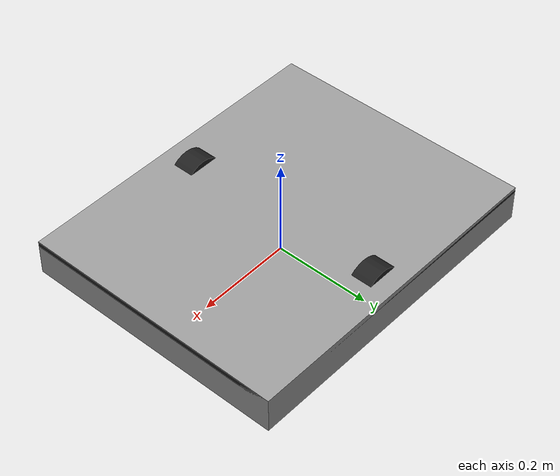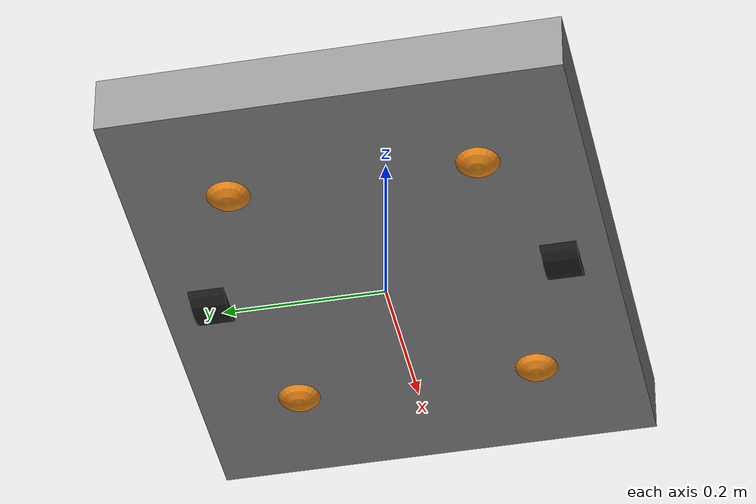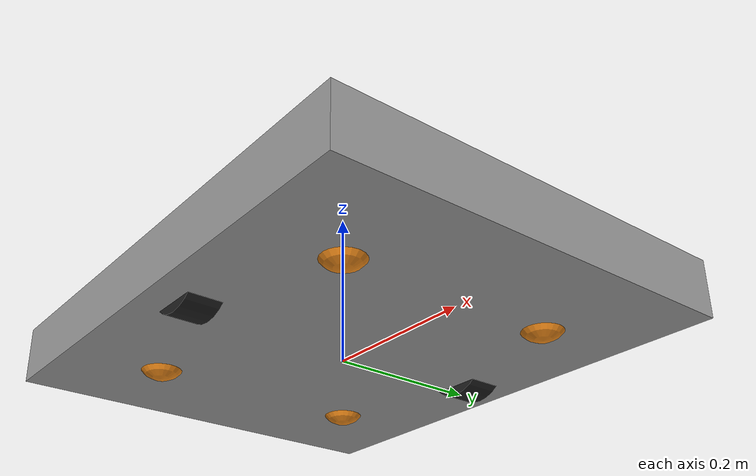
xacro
<?xml version="1.0"?>
<robot name="underlift_robot" xmlns:xacro="http://www.ros.org/wiki/xacro">

    <xacro:property name="base_length" value="0.679" />
    <xacro:property name="base_width" value="0.550" />
    <xacro:property name="base_height" value="0.075" />
    <xacro:property name="wheel_radius" value="0.05" />
    <xacro:property name="wheel_length" value="0.044" />
    <xacro:property name="caster_radius" value="0.035" />
    <xacro:property name="lift_height" value="0.005" />

    <link name="base_footprint" />

    <link name="base_link">
        <visual>
            <geometry>
                 <box size="${base_length} ${base_width} ${base_height}"/>
            </geometry>
            <origin xyz="0 0 0" rpy="0 0 0" />
            <material name="grey" />
        </visual>
        <collision>
            <geometry>
                <box size="${base_length} ${base_width} ${base_height}"/>
            </geometry>
            <origin xyz="0 0 0" rpy="0 0 0" />
        </collision>
        <xacro:box_inertia m="20.0" x="${base_length}" y="${base_width}" z="${base_height}"
                           o_xyz="0 0 ${base_height / 2.0}" o_rpy="0 0 0" />
    </link>

    <xacro:macro name="wheel_link" params="prefix">
        <link name="${prefix}_wheel_link">
            <visual>
                <geometry>
                    <cylinder radius="${wheel_radius}" length="${wheel_length}" />
                </geometry>
                <origin xyz="0 0 0" rpy="${pi / 2.0} 0 0" />
                <material name="black" />
            </visual>
            <collision>
                <geometry>
                    <cylinder radius="${wheel_radius}" length="${wheel_length}" />
                </geometry>
                <origin xyz="0 0 0" rpy="${pi / 2.0} 0 0" />
            </collision>
            <xacro:cylinder_inertia m="10.0" r="${wheel_radius}" l="${wheel_length}"
                                    o_xyz="0 0 0" o_rpy="${pi / 2.0} 0 0" />
        </link>
    </xacro:macro>

    <xacro:wheel_link prefix="right" />
    <xacro:wheel_link prefix="left" />

    <link name="front_right_caster_wheel_link">
        <visual>
            <geometry>
                <sphere radius="${caster_radius}" />
            </geometry>
            <origin xyz="0 0 0" rpy="0 0 0" />
            <material name="orange" />
        </visual>
        <collision>
            <geometry>
                <sphere radius="${caster_radius}" />
            </geometry>
            <origin xyz="0 0 0" rpy="0 0 0" />
        </collision>
        <xacro:sphere_inertia m="0.1" r="${caster_radius}"
                              o_xyz="0 0 0" o_rpy="0 0 0" />
    </link>

    <link name="front_left_caster_wheel_link">
        <visual>
            <geometry>
                <sphere radius="${caster_radius}" />
            </geometry>
            <origin xyz="0 0 0" rpy="0 0 0" />
            <material name="orange" />
        </visual>
        <collision>
            <geometry>
                <sphere radius="${caster_radius}" />
            </geometry>
            <origin xyz="0 0 0" rpy="0 0 0" />
        </collision>
        <xacro:sphere_inertia m="0.1" r="${caster_radius}"
                              o_xyz="0 0 0" o_rpy="0 0 0" />
    </link>

    <link name="back_left_caster_wheel_link">
        <visual>
            <geometry>
                <sphere radius="${caster_radius}" />
            </geometry>
            <origin xyz="0 0 0" rpy="0 0 0" />
            <material name="orange" />
        </visual>
        <collision>
            <geometry>
                <sphere radius="${caster_radius}" />
            </geometry>
            <origin xyz="0 0 0" rpy="0 0 0" />
        </collision>
        <xacro:sphere_inertia m="0.1" r="${caster_radius}"
                              o_xyz="0 0 0" o_rpy="0 0 0" />
    </link>

    <link name="back_right_caster_wheel_link">
        <visual>
            <geometry>
                <sphere radius="${caster_radius}" />
            </geometry>
            <origin xyz="0 0 0" rpy="0 0 0" />
            <material name="orange" />
        </visual>
        <collision>
            <geometry>
                <sphere radius="${caster_radius}" />
            </geometry>
            <origin xyz="0 0 0" rpy="0 0 0" />
        </collision>
        <xacro:sphere_inertia m="0.1" r="${caster_radius}"
                              o_xyz="0 0 0" o_rpy="0 0 0" />
    </link>

    <link name="lift_link">
        <visual>
            <geometry>
                <box size="${base_length / 4} ${base_width / 4} ${lift_height}"/>
            </geometry>
            <origin xyz="0 0 0" rpy="0 0 0"/>
            <material name="orange"/>
        </visual>
        <collision>
            <geometry>
                <box size="${base_length / 4} ${base_width / 4} ${lift_height}"/>
            </geometry>
            <origin xyz="0 0 0" rpy="0 0 0"/>
        </collision>
        <xacro:box_inertia m="1.0" x="${base_length / 4}" y="${base_width / 4}" z="${lift_height}"
                           o_xyz="0 0 0.01" o_rpy="0 0 0" />
    </link>

    <link name="lift_surface_link">
        <visual>
            <geometry>
                <box size="${base_length} ${base_width} 0.01"/>
            </geometry>
            <origin xyz="0 0 0" rpy="0 0 0"/>
            <material name="black"/>
        </visual>
        <collision>
            <geometry>
                <box size="${base_length} ${base_width} 0.01"/>
            </geometry>
            <origin xyz="0 0 0" rpy="0 0 0"/>
        </collision>
        <xacro:box_inertia m="10.0" x="${base_length}" y="${base_width}" z="0.01"
                           o_xyz="0 0 0.01" o_rpy="0 0 0" />
    </link>

    <joint name="base_joint" type="fixed">
        <parent link="base_footprint" />
        <child link="base_link" />
        <origin xyz="0 0 ${base_height / 2 + wheel_radius - base_height / 2}" rpy="0 0 0"/>
    </joint>

    <joint name="base_right_wheel_joint" type="continuous">
        <parent link="base_link" />
        <child link="right_wheel_link" />
        <origin xyz="0 -0.215 0" rpy="0 0 0" />
        <axis xyz="0 1 0" />
    </joint>

    <joint name="base_left_wheel_joint" type="continuous">
        <parent link="base_link" />
        <child link="left_wheel_link" />
        <origin xyz="0 0.215 0" rpy="0 0 0" />
        <axis xyz="0 1 0" />
    </joint>

    <joint name="base_front_right_caster_wheel_joint" type="fixed">
        <parent link="base_link" />
        <child link="front_right_caster_wheel_link" />
        <origin xyz="0.194 -0.149 ${-((base_height / 2 - caster_radius) + (wheel_radius - base_height / 2))}" rpy="0 0 0" />
    </joint>

    <joint name="base_front_left_caster_wheel_joint" type="fixed">
        <parent link="base_link" />
        <child link="front_left_caster_wheel_link" />
        <origin xyz="0.194 0.149 ${-((base_height / 2 - caster_radius) + (wheel_radius - base_height / 2))}" rpy="0 0 0" />
    </joint>

    <joint name="base_back_right_caster_wheel_joint" type="fixed">
        <parent link="base_link" />
        <child link="back_right_caster_wheel_link" />
        <origin xyz="-0.194 -0.149 ${-((base_height / 2 - caster_radius) + (wheel_radius - base_height / 2))}" rpy="0 0 0" />
    </joint>

    <joint name="base_back_left_caster_wheel_joint" type="fixed">
        <parent link="base_link" />
        <child link="back_left_caster_wheel_link" />
        <origin xyz="-0.194 0.149 ${-((base_height / 2 - caster_radius) + (wheel_radius - base_height / 2))}" rpy="0 0 0" />
    </joint>

    <joint name="lift_joint" type="prismatic">
        <parent link="base_link"/>
        <child  link="lift_link"/>
        <origin xyz="0 0 ${base_height / 4 + 0.01}" rpy="0 0 0"/>
        <axis xyz="0 0 1"/>
        <limit lower="0.0" upper="0.5" effort="5000.0" velocity="0.5"/>
    </joint>

    <joint name="lift_surface_joint" type="fixed">
        <parent link="lift_link"/>
        <child  link="lift_surface_link"/>
        <origin xyz="0 0 ${lift_height / 2}" rpy="0 0 0"/>
    </joint>

</robot>
